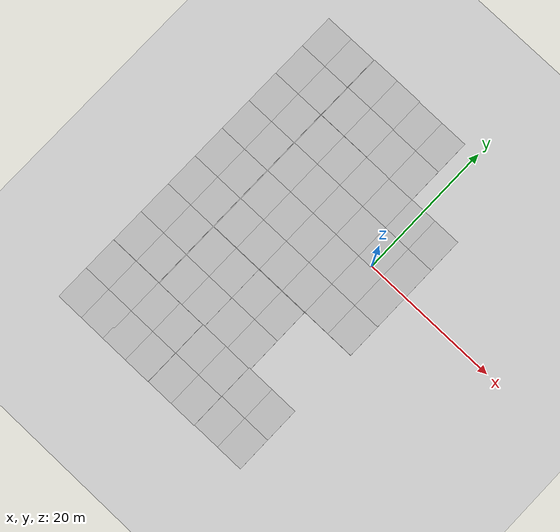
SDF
<sdf version="1.7">
 <world name="default">
  <model name="ground_plane">
   <static>1</static>
   <link name="link">
    <collision name="collision">
     <geometry><plane><normal>0 0 1</normal><size>100 100</size></plane></geometry>
     <surface><friction><ode><mu>100</mu><mu2>50</mu2></ode></friction></surface>
    </collision>
    <visual name="visual">
     <cast_shadows>0</cast_shadows>
     <geometry><plane><normal>0 0 1</normal><size>100 100</size></plane></geometry>
     <material>
      <script><uri>file://media/materials/scripts/gazebo.material</uri><name>Gazebo/Grey</name></script>
     </material>
    </visual>
   </link>
  </model>
  <model name="mud_box">
   <static>1</static>
   <link name="link">
    <collision name="collision"><geometry><box><size>8 10 0.2</size></box></geometry></collision>
    <visual name="visual_1">
     <pose>-2 2.5 0 0 -0 0</pose>
     <cast_shadows>0</cast_shadows>
     <geometry><box><size>4 5 0.2</size></box></geometry>
     <material>
      <script>
       <uri>model://mud_box/materials/scripts</uri>
       <uri>model://mud_box/materials/textures</uri>
       <name>vrc/mud</name>
      </script>
     </material>
    </visual>
    <visual name="visual_2">
     <pose>2 2.5 0 0 -0 0</pose>
     <cast_shadows>0</cast_shadows>
     <geometry><box><size>4 5 0.2</size></box></geometry>
     <material>
      <script>
       <uri>model://mud_box/materials/scripts</uri>
       <uri>model://mud_box/materials/textures</uri>
       <name>vrc/mud</name>
      </script>
     </material>
    </visual>
    <visual name="visual_3">
     <pose>2 -2.5 0 0 -0 0</pose>
     <cast_shadows>0</cast_shadows>
     <geometry><box><size>4 5 0.2</size></box></geometry>
     <material>
      <script>
       <uri>model://mud_box/materials/scripts</uri>
       <uri>model://mud_box/materials/textures</uri>
       <name>vrc/mud</name>
      </script>
     </material>
    </visual>
    <visual name="visual_4">
     <pose>-2 -2.5 0 0 -0 0</pose>
     <cast_shadows>0</cast_shadows>
     <geometry><box><size>4 5 0.2</size></box></geometry>
     <material>
      <script>
       <uri>model://mud_box/materials/scripts</uri>
       <uri>model://mud_box/materials/textures</uri>
       <name>vrc/mud</name>
      </script>
     </material>
    </visual>
   </link>
   <pose>-6.12765 4.83622 0 0 -0 0</pose>
  </model>
  <model name="mud_box_0">
   <static>1</static>
   <link name="link">
    <collision name="collision"><geometry><box><size>8 10 0.2</size></box></geometry></collision>
    <visual name="visual_1">
     <pose>-2 2.5 0 0 -0 0</pose>
     <cast_shadows>0</cast_shadows>
     <geometry><box><size>4 5 0.2</size></box></geometry>
     <material>
      <script>
       <uri>model://mud_box/materials/scripts</uri>
       <uri>model://mud_box/materials/textures</uri>
       <name>vrc/mud</name>
      </script>
     </material>
    </visual>
    <visual name="visual_2">
     <pose>2 2.5 0 0 -0 0</pose>
     <cast_shadows>0</cast_shadows>
     <geometry><box><size>4 5 0.2</size></box></geometry>
     <material>
      <script>
       <uri>model://mud_box/materials/scripts</uri>
       <uri>model://mud_box/materials/textures</uri>
       <name>vrc/mud</name>
      </script>
     </material>
    </visual>
    <visual name="visual_3">
     <pose>2 -2.5 0 0 -0 0</pose>
     <cast_shadows>0</cast_shadows>
     <geometry><box><size>4 5 0.2</size></box></geometry>
     <material>
      <script>
       <uri>model://mud_box/materials/scripts</uri>
       <uri>model://mud_box/materials/textures</uri>
       <name>vrc/mud</name>
      </script>
     </material>
    </visual>
    <visual name="visual_4">
     <pose>-2 -2.5 0 0 -0 0</pose>
     <cast_shadows>0</cast_shadows>
     <geometry><box><size>4 5 0.2</size></box></geometry>
     <material>
      <script>
       <uri>model://mud_box/materials/scripts</uri>
       <uri>model://mud_box/materials/textures</uri>
       <name>vrc/mud</name>
      </script>
     </material>
    </visual>
   </link>
   <pose>1.86767 4.83104 0 0 -0 0</pose>
  </model>
  <model name="mud_box_1">
   <static>1</static>
   <link name="link">
    <collision name="collision"><geometry><box><size>8 10 0.2</size></box></geometry></collision>
    <visual name="visual_1">
     <pose>-2 2.5 0 0 -0 0</pose>
     <cast_shadows>0</cast_shadows>
     <geometry><box><size>4 5 0.2</size></box></geometry>
     <material>
      <script>
       <uri>model://mud_box/materials/scripts</uri>
       <uri>model://mud_box/materials/textures</uri>
       <name>vrc/mud</name>
      </script>
     </material>
    </visual>
    <visual name="visual_2">
     <pose>2 2.5 0 0 -0 0</pose>
     <cast_shadows>0</cast_shadows>
     <geometry><box><size>4 5 0.2</size></box></geometry>
     <material>
      <script>
       <uri>model://mud_box/materials/scripts</uri>
       <uri>model://mud_box/materials/textures</uri>
       <name>vrc/mud</name>
      </script>
     </material>
    </visual>
    <visual name="visual_3">
     <pose>2 -2.5 0 0 -0 0</pose>
     <cast_shadows>0</cast_shadows>
     <geometry><box><size>4 5 0.2</size></box></geometry>
     <material>
      <script>
       <uri>model://mud_box/materials/scripts</uri>
       <uri>model://mud_box/materials/textures</uri>
       <name>vrc/mud</name>
      </script>
     </material>
    </visual>
    <visual name="visual_4">
     <pose>-2 -2.5 0 0 -0 0</pose>
     <cast_shadows>0</cast_shadows>
     <geometry><box><size>4 5 0.2</size></box></geometry>
     <material>
      <script>
       <uri>model://mud_box/materials/scripts</uri>
       <uri>model://mud_box/materials/textures</uri>
       <name>vrc/mud</name>
      </script>
     </material>
    </visual>
   </link>
   <pose>-6.12792 -5.13998 0 0 -0 0</pose>
  </model>
  <model name="mud_box_2">
   <static>1</static>
   <link name="link">
    <collision name="collision"><geometry><box><size>8 10 0.2</size></box></geometry></collision>
    <visual name="visual_1">
     <pose>-2 2.5 0 0 -0 0</pose>
     <cast_shadows>0</cast_shadows>
     <geometry><box><size>4 5 0.2</size></box></geometry>
     <material>
      <script>
       <uri>model://mud_box/materials/scripts</uri>
       <uri>model://mud_box/materials/textures</uri>
       <name>vrc/mud</name>
      </script>
     </material>
    </visual>
    <visual name="visual_2">
     <pose>2 2.5 0 0 -0 0</pose>
     <cast_shadows>0</cast_shadows>
     <geometry><box><size>4 5 0.2</size></box></geometry>
     <material>
      <script>
       <uri>model://mud_box/materials/scripts</uri>
       <uri>model://mud_box/materials/textures</uri>
       <name>vrc/mud</name>
      </script>
     </material>
    </visual>
    <visual name="visual_3">
     <pose>2 -2.5 0 0 -0 0</pose>
     <cast_shadows>0</cast_shadows>
     <geometry><box><size>4 5 0.2</size></box></geometry>
     <material>
      <script>
       <uri>model://mud_box/materials/scripts</uri>
       <uri>model://mud_box/materials/textures</uri>
       <name>vrc/mud</name>
      </script>
     </material>
    </visual>
    <visual name="visual_4">
     <pose>-2 -2.5 0 0 -0 0</pose>
     <cast_shadows>0</cast_shadows>
     <geometry><box><size>4 5 0.2</size></box></geometry>
     <material>
      <script>
       <uri>model://mud_box/materials/scripts</uri>
       <uri>model://mud_box/materials/textures</uri>
       <name>vrc/mud</name>
      </script>
     </material>
    </visual>
   </link>
   <pose>1.85975 -5.14192 0 0 -0 0</pose>
  </model>
  <model name="mud_box_0_clone_clone_1">
   <static>1</static>
   <link name="link">
    <collision name="collision"><geometry><box><size>8 10 0.2</size></box></geometry></collision>
    <visual name="visual_1">
     <pose>-2 2.5 0 0 -0 0</pose>
     <cast_shadows>0</cast_shadows>
     <geometry><box><size>4 5 0.2</size></box></geometry>
     <material>
      <script>
       <uri>model://mud_box/materials/scripts</uri>
       <uri>model://mud_box/materials/textures</uri>
       <name>vrc/mud</name>
      </script>
     </material>
    </visual>
    <visual name="visual_2">
     <pose>2 2.5 0 0 -0 0</pose>
     <cast_shadows>0</cast_shadows>
     <geometry><box><size>4 5 0.2</size></box></geometry>
     <material>
      <script>
       <uri>model://mud_box/materials/scripts</uri>
       <uri>model://mud_box/materials/textures</uri>
       <name>vrc/mud</name>
      </script>
     </material>
    </visual>
    <visual name="visual_3">
     <pose>2 -2.5 0 0 -0 0</pose>
     <cast_shadows>0</cast_shadows>
     <geometry><box><size>4 5 0.2</size></box></geometry>
     <material>
      <script>
       <uri>model://mud_box/materials/scripts</uri>
       <uri>model://mud_box/materials/textures</uri>
       <name>vrc/mud</name>
      </script>
     </material>
    </visual>
    <visual name="visual_4">
     <pose>-2 -2.5 0 0 -0 0</pose>
     <cast_shadows>0</cast_shadows>
     <geometry><box><size>4 5 0.2</size></box></geometry>
     <material>
      <script>
       <uri>model://mud_box/materials/scripts</uri>
       <uri>model://mud_box/materials/textures</uri>
       <name>vrc/mud</name>
      </script>
     </material>
    </visual>
   </link>
   <pose>-14.1276 -5.15209 0 0 -0 0</pose>
  </model>
  <model name="mud_box_0_clone_clone_2">
   <static>1</static>
   <link name="link">
    <collision name="collision"><geometry><box><size>8 10 0.2</size></box></geometry></collision>
    <visual name="visual_1">
     <pose>-2 2.5 0 0 -0 0</pose>
     <cast_shadows>0</cast_shadows>
     <geometry><box><size>4 5 0.2</size></box></geometry>
     <material>
      <script>
       <uri>model://mud_box/materials/scripts</uri>
       <uri>model://mud_box/materials/textures</uri>
       <name>vrc/mud</name>
      </script>
     </material>
    </visual>
    <visual name="visual_2">
     <pose>2 2.5 0 0 -0 0</pose>
     <cast_shadows>0</cast_shadows>
     <geometry><box><size>4 5 0.2</size></box></geometry>
     <material>
      <script>
       <uri>model://mud_box/materials/scripts</uri>
       <uri>model://mud_box/materials/textures</uri>
       <name>vrc/mud</name>
      </script>
     </material>
    </visual>
    <visual name="visual_3">
     <pose>2 -2.5 0 0 -0 0</pose>
     <cast_shadows>0</cast_shadows>
     <geometry><box><size>4 5 0.2</size></box></geometry>
     <material>
      <script>
       <uri>model://mud_box/materials/scripts</uri>
       <uri>model://mud_box/materials/textures</uri>
       <name>vrc/mud</name>
      </script>
     </material>
    </visual>
    <visual name="visual_4">
     <pose>-2 -2.5 0 0 -0 0</pose>
     <cast_shadows>0</cast_shadows>
     <geometry><box><size>4 5 0.2</size></box></geometry>
     <material>
      <script>
       <uri>model://mud_box/materials/scripts</uri>
       <uri>model://mud_box/materials/textures</uri>
       <name>vrc/mud</name>
      </script>
     </material>
    </visual>
   </link>
   <pose>-14.1258 4.84756 0 0 -0 0</pose>
  </model>
  <model name="mud_box_0_clone_clone_2_clone">
   <static>1</static>
   <link name="link">
    <collision name="collision"><geometry><box><size>8 10 0.2</size></box></geometry></collision>
    <visual name="visual_1">
     <pose>-2 2.5 0 0 -0 0</pose>
     <cast_shadows>0</cast_shadows>
     <geometry><box><size>4 5 0.2</size></box></geometry>
     <material>
      <script>
       <uri>model://mud_box/materials/scripts</uri>
       <uri>model://mud_box/materials/textures</uri>
       <name>vrc/mud</name>
      </script>
     </material>
    </visual>
    <visual name="visual_2">
     <pose>2 2.5 0 0 -0 0</pose>
     <cast_shadows>0</cast_shadows>
     <geometry><box><size>4 5 0.2</size></box></geometry>
     <material>
      <script>
       <uri>model://mud_box/materials/scripts</uri>
       <uri>model://mud_box/materials/textures</uri>
       <name>vrc/mud</name>
      </script>
     </material>
    </visual>
    <visual name="visual_3">
     <pose>2 -2.5 0 0 -0 0</pose>
     <cast_shadows>0</cast_shadows>
     <geometry><box><size>4 5 0.2</size></box></geometry>
     <material>
      <script>
       <uri>model://mud_box/materials/scripts</uri>
       <uri>model://mud_box/materials/textures</uri>
       <name>vrc/mud</name>
      </script>
     </material>
    </visual>
    <visual name="visual_4">
     <pose>-2 -2.5 0 0 -0 0</pose>
     <cast_shadows>0</cast_shadows>
     <geometry><box><size>4 5 0.2</size></box></geometry>
     <material>
      <script>
       <uri>model://mud_box/materials/scripts</uri>
       <uri>model://mud_box/materials/textures</uri>
       <name>vrc/mud</name>
      </script>
     </material>
    </visual>
   </link>
   <pose>-14.1222 14.8631 0 0 -0 0</pose>
  </model>
  <model name="mud_box_0_clone_clone_2_clone_clone">
   <static>1</static>
   <link name="link">
    <collision name="collision"><geometry><box><size>8 10 0.2</size></box></geometry></collision>
    <visual name="visual_1">
     <pose>-2 2.5 0 0 -0 0</pose>
     <cast_shadows>0</cast_shadows>
     <geometry><box><size>4 5 0.2</size></box></geometry>
     <material>
      <script>
       <uri>model://mud_box/materials/scripts</uri>
       <uri>model://mud_box/materials/textures</uri>
       <name>vrc/mud</name>
      </script>
     </material>
    </visual>
    <visual name="visual_2">
     <pose>2 2.5 0 0 -0 0</pose>
     <cast_shadows>0</cast_shadows>
     <geometry><box><size>4 5 0.2</size></box></geometry>
     <material>
      <script>
       <uri>model://mud_box/materials/scripts</uri>
       <uri>model://mud_box/materials/textures</uri>
       <name>vrc/mud</name>
      </script>
     </material>
    </visual>
    <visual name="visual_3">
     <pose>2 -2.5 0 0 -0 0</pose>
     <cast_shadows>0</cast_shadows>
     <geometry><box><size>4 5 0.2</size></box></geometry>
     <material>
      <script>
       <uri>model://mud_box/materials/scripts</uri>
       <uri>model://mud_box/materials/textures</uri>
       <name>vrc/mud</name>
      </script>
     </material>
    </visual>
    <visual name="visual_4">
     <pose>-2 -2.5 0 0 -0 0</pose>
     <cast_shadows>0</cast_shadows>
     <geometry><box><size>4 5 0.2</size></box></geometry>
     <material>
      <script>
       <uri>model://mud_box/materials/scripts</uri>
       <uri>model://mud_box/materials/textures</uri>
       <name>vrc/mud</name>
      </script>
     </material>
    </visual>
   </link>
   <pose>-6.12553 14.7777 0 0 -0 0</pose>
  </model>
  <model name="mud_box_0_clone_clone_2_clone_clone_clone_clone_1">
   <static>1</static>
   <link name="link">
    <collision name="collision"><geometry><box><size>8 10 0.2</size></box></geometry></collision>
    <visual name="visual_1">
     <pose>-2 2.5 0 0 -0 0</pose>
     <cast_shadows>0</cast_shadows>
     <geometry><box><size>4 5 0.2</size></box></geometry>
     <material>
      <script>
       <uri>model://mud_box/materials/scripts</uri>
       <uri>model://mud_box/materials/textures</uri>
       <name>vrc/mud</name>
      </script>
     </material>
    </visual>
    <visual name="visual_2">
     <pose>2 2.5 0 0 -0 0</pose>
     <cast_shadows>0</cast_shadows>
     <geometry><box><size>4 5 0.2</size></box></geometry>
     <material>
      <script>
       <uri>model://mud_box/materials/scripts</uri>
       <uri>model://mud_box/materials/textures</uri>
       <name>vrc/mud</name>
      </script>
     </material>
    </visual>
    <visual name="visual_3">
     <pose>2 -2.5 0 0 -0 0</pose>
     <cast_shadows>0</cast_shadows>
     <geometry><box><size>4 5 0.2</size></box></geometry>
     <material>
      <script>
       <uri>model://mud_box/materials/scripts</uri>
       <uri>model://mud_box/materials/textures</uri>
       <name>vrc/mud</name>
      </script>
     </material>
    </visual>
    <visual name="visual_4">
     <pose>-2 -2.5 0 0 -0 0</pose>
     <cast_shadows>0</cast_shadows>
     <geometry><box><size>4 5 0.2</size></box></geometry>
     <material>
      <script>
       <uri>model://mud_box/materials/scripts</uri>
       <uri>model://mud_box/materials/textures</uri>
       <name>vrc/mud</name>
      </script>
     </material>
    </visual>
   </link>
   <pose>-14.1452 -15.1975 0 0 -0 0</pose>
  </model>
  <model name="mud_box_0_clone_clone_2_clone_clone_clone_clone_2">
   <static>1</static>
   <link name="link">
    <collision name="collision"><geometry><box><size>8 10 0.2</size></box></geometry></collision>
    <visual name="visual_1">
     <pose>-2 2.5 0 0 -0 0</pose>
     <cast_shadows>0</cast_shadows>
     <geometry><box><size>4 5 0.2</size></box></geometry>
     <material>
      <script>
       <uri>model://mud_box/materials/scripts</uri>
       <uri>model://mud_box/materials/textures</uri>
       <name>vrc/mud</name>
      </script>
     </material>
    </visual>
    <visual name="visual_2">
     <pose>2 2.5 0 0 -0 0</pose>
     <cast_shadows>0</cast_shadows>
     <geometry><box><size>4 5 0.2</size></box></geometry>
     <material>
      <script>
       <uri>model://mud_box/materials/scripts</uri>
       <uri>model://mud_box/materials/textures</uri>
       <name>vrc/mud</name>
      </script>
     </material>
    </visual>
    <visual name="visual_3">
     <pose>2 -2.5 0 0 -0 0</pose>
     <cast_shadows>0</cast_shadows>
     <geometry><box><size>4 5 0.2</size></box></geometry>
     <material>
      <script>
       <uri>model://mud_box/materials/scripts</uri>
       <uri>model://mud_box/materials/textures</uri>
       <name>vrc/mud</name>
      </script>
     </material>
    </visual>
    <visual name="visual_4">
     <pose>-2 -2.5 0 0 -0 0</pose>
     <cast_shadows>0</cast_shadows>
     <geometry><box><size>4 5 0.2</size></box></geometry>
     <material>
      <script>
       <uri>model://mud_box/materials/scripts</uri>
       <uri>model://mud_box/materials/textures</uri>
       <name>vrc/mud</name>
      </script>
     </material>
    </visual>
   </link>
   <pose>-6.14018 -15.1954 0 0 -0 0</pose>
  </model>
  <model name="mud_box_0_clone_clone_2_clone_clone_clone_clone_10">
   <static>1</static>
   <link name="link">
    <collision name="collision"><geometry><box><size>8 10 0.2</size></box></geometry></collision>
    <visual name="visual_1">
     <pose>-2 2.5 0 0 -0 0</pose>
     <cast_shadows>0</cast_shadows>
     <geometry><box><size>4 5 0.2</size></box></geometry>
     <material>
      <script>
       <uri>model://mud_box/materials/scripts</uri>
       <uri>model://mud_box/materials/textures</uri>
       <name>vrc/mud</name>
      </script>
     </material>
    </visual>
    <visual name="visual_2">
     <pose>2 2.5 0 0 -0 0</pose>
     <cast_shadows>0</cast_shadows>
     <geometry><box><size>4 5 0.2</size></box></geometry>
     <material>
      <script>
       <uri>model://mud_box/materials/scripts</uri>
       <uri>model://mud_box/materials/textures</uri>
       <name>vrc/mud</name>
      </script>
     </material>
    </visual>
    <visual name="visual_3">
     <pose>2 -2.5 0 0 -0 0</pose>
     <cast_shadows>0</cast_shadows>
     <geometry><box><size>4 5 0.2</size></box></geometry>
     <material>
      <script>
       <uri>model://mud_box/materials/scripts</uri>
       <uri>model://mud_box/materials/textures</uri>
       <name>vrc/mud</name>
      </script>
     </material>
    </visual>
    <visual name="visual_4">
     <pose>-2 -2.5 0 0 -0 0</pose>
     <cast_shadows>0</cast_shadows>
     <geometry><box><size>4 5 0.2</size></box></geometry>
     <material>
      <script>
       <uri>model://mud_box/materials/scripts</uri>
       <uri>model://mud_box/materials/textures</uri>
       <name>vrc/mud</name>
      </script>
     </material>
    </visual>
   </link>
   <pose>-22.2387 -15.1656 0 0 -0 0</pose>
  </model>
  <model name="mud_box_0_clone_clone_2_clone_clone_clone_clone_11">
   <static>1</static>
   <link name="link">
    <collision name="collision"><geometry><box><size>8 10 0.2</size></box></geometry></collision>
    <visual name="visual_1">
     <pose>-2 2.5 0 0 -0 0</pose>
     <cast_shadows>0</cast_shadows>
     <geometry><box><size>4 5 0.2</size></box></geometry>
     <material>
      <script>
       <uri>model://mud_box/materials/scripts</uri>
       <uri>model://mud_box/materials/textures</uri>
       <name>vrc/mud</name>
      </script>
     </material>
    </visual>
    <visual name="visual_2">
     <pose>2 2.5 0 0 -0 0</pose>
     <cast_shadows>0</cast_shadows>
     <geometry><box><size>4 5 0.2</size></box></geometry>
     <material>
      <script>
       <uri>model://mud_box/materials/scripts</uri>
       <uri>model://mud_box/materials/textures</uri>
       <name>vrc/mud</name>
      </script>
     </material>
    </visual>
    <visual name="visual_3">
     <pose>2 -2.5 0 0 -0 0</pose>
     <cast_shadows>0</cast_shadows>
     <geometry><box><size>4 5 0.2</size></box></geometry>
     <material>
      <script>
       <uri>model://mud_box/materials/scripts</uri>
       <uri>model://mud_box/materials/textures</uri>
       <name>vrc/mud</name>
      </script>
     </material>
    </visual>
    <visual name="visual_4">
     <pose>-2 -2.5 0 0 -0 0</pose>
     <cast_shadows>0</cast_shadows>
     <geometry><box><size>4 5 0.2</size></box></geometry>
     <material>
      <script>
       <uri>model://mud_box/materials/scripts</uri>
       <uri>model://mud_box/materials/textures</uri>
       <name>vrc/mud</name>
      </script>
     </material>
    </visual>
   </link>
   <pose>-22.2344 -5.18744 0 0 -0 0</pose>
  </model>
  <model name="mud_box_0_clone_clone_2_clone_clone_clone_clone_12">
   <static>1</static>
   <link name="link">
    <collision name="collision"><geometry><box><size>8 10 0.2</size></box></geometry></collision>
    <visual name="visual_1">
     <pose>-2 2.5 0 0 -0 0</pose>
     <cast_shadows>0</cast_shadows>
     <geometry><box><size>4 5 0.2</size></box></geometry>
     <material>
      <script>
       <uri>model://mud_box/materials/scripts</uri>
       <uri>model://mud_box/materials/textures</uri>
       <name>vrc/mud</name>
      </script>
     </material>
    </visual>
    <visual name="visual_2">
     <pose>2 2.5 0 0 -0 0</pose>
     <cast_shadows>0</cast_shadows>
     <geometry><box><size>4 5 0.2</size></box></geometry>
     <material>
      <script>
       <uri>model://mud_box/materials/scripts</uri>
       <uri>model://mud_box/materials/textures</uri>
       <name>vrc/mud</name>
      </script>
     </material>
    </visual>
    <visual name="visual_3">
     <pose>2 -2.5 0 0 -0 0</pose>
     <cast_shadows>0</cast_shadows>
     <geometry><box><size>4 5 0.2</size></box></geometry>
     <material>
      <script>
       <uri>model://mud_box/materials/scripts</uri>
       <uri>model://mud_box/materials/textures</uri>
       <name>vrc/mud</name>
      </script>
     </material>
    </visual>
    <visual name="visual_4">
     <pose>-2 -2.5 0 0 -0 0</pose>
     <cast_shadows>0</cast_shadows>
     <geometry><box><size>4 5 0.2</size></box></geometry>
     <material>
      <script>
       <uri>model://mud_box/materials/scripts</uri>
       <uri>model://mud_box/materials/textures</uri>
       <name>vrc/mud</name>
      </script>
     </material>
    </visual>
   </link>
   <pose>-22.2248 4.81564 0 0 -0 0</pose>
  </model>
  <model name="mud_box_0_clone_clone_2_clone_clone_clone_clone_13">
   <static>1</static>
   <link name="link">
    <collision name="collision"><geometry><box><size>8 10 0.2</size></box></geometry></collision>
    <visual name="visual_1">
     <pose>-2 2.5 0 0 -0 0</pose>
     <cast_shadows>0</cast_shadows>
     <geometry><box><size>4 5 0.2</size></box></geometry>
     <material>
      <script>
       <uri>model://mud_box/materials/scripts</uri>
       <uri>model://mud_box/materials/textures</uri>
       <name>vrc/mud</name>
      </script>
     </material>
    </visual>
    <visual name="visual_2">
     <pose>2 2.5 0 0 -0 0</pose>
     <cast_shadows>0</cast_shadows>
     <geometry><box><size>4 5 0.2</size></box></geometry>
     <material>
      <script>
       <uri>model://mud_box/materials/scripts</uri>
       <uri>model://mud_box/materials/textures</uri>
       <name>vrc/mud</name>
      </script>
     </material>
    </visual>
    <visual name="visual_3">
     <pose>2 -2.5 0 0 -0 0</pose>
     <cast_shadows>0</cast_shadows>
     <geometry><box><size>4 5 0.2</size></box></geometry>
     <material>
      <script>
       <uri>model://mud_box/materials/scripts</uri>
       <uri>model://mud_box/materials/textures</uri>
       <name>vrc/mud</name>
      </script>
     </material>
    </visual>
    <visual name="visual_4">
     <pose>-2 -2.5 0 0 -0 0</pose>
     <cast_shadows>0</cast_shadows>
     <geometry><box><size>4 5 0.2</size></box></geometry>
     <material>
      <script>
       <uri>model://mud_box/materials/scripts</uri>
       <uri>model://mud_box/materials/textures</uri>
       <name>vrc/mud</name>
      </script>
     </material>
    </visual>
   </link>
   <pose>-22.2066 14.8093 0 0 -0 0</pose>
  </model>
  <model name="mud_box_0_clone_clone_2_clone_clone_clone_clone_14">
   <static>1</static>
   <link name="link">
    <collision name="collision"><geometry><box><size>8 10 0.2</size></box></geometry></collision>
    <visual name="visual_1">
     <pose>-2 2.5 0 0 -0 0</pose>
     <cast_shadows>0</cast_shadows>
     <geometry><box><size>4 5 0.2</size></box></geometry>
     <material>
      <script>
       <uri>model://mud_box/materials/scripts</uri>
       <uri>model://mud_box/materials/textures</uri>
       <name>vrc/mud</name>
      </script>
     </material>
    </visual>
    <visual name="visual_2">
     <pose>2 2.5 0 0 -0 0</pose>
     <cast_shadows>0</cast_shadows>
     <geometry><box><size>4 5 0.2</size></box></geometry>
     <material>
      <script>
       <uri>model://mud_box/materials/scripts</uri>
       <uri>model://mud_box/materials/textures</uri>
       <name>vrc/mud</name>
      </script>
     </material>
    </visual>
    <visual name="visual_3">
     <pose>2 -2.5 0 0 -0 0</pose>
     <cast_shadows>0</cast_shadows>
     <geometry><box><size>4 5 0.2</size></box></geometry>
     <material>
      <script>
       <uri>model://mud_box/materials/scripts</uri>
       <uri>model://mud_box/materials/textures</uri>
       <name>vrc/mud</name>
      </script>
     </material>
    </visual>
    <visual name="visual_4">
     <pose>-2 -2.5 0 0 -0 0</pose>
     <cast_shadows>0</cast_shadows>
     <geometry><box><size>4 5 0.2</size></box></geometry>
     <material>
      <script>
       <uri>model://mud_box/materials/scripts</uri>
       <uri>model://mud_box/materials/textures</uri>
       <name>vrc/mud</name>
      </script>
     </material>
    </visual>
   </link>
   <pose>-22.2611 -25.1945 0 0 -0 0</pose>
  </model>
  <model name="mud_box_0_clone_clone_2_clone_clone_clone_clone_15">
   <static>1</static>
   <link name="link">
    <collision name="collision"><geometry><box><size>8 10 0.2</size></box></geometry></collision>
    <visual name="visual_1">
     <pose>-2 2.5 0 0 -0 0</pose>
     <cast_shadows>0</cast_shadows>
     <geometry><box><size>4 5 0.2</size></box></geometry>
     <material>
      <script>
       <uri>model://mud_box/materials/scripts</uri>
       <uri>model://mud_box/materials/textures</uri>
       <name>vrc/mud</name>
      </script>
     </material>
    </visual>
    <visual name="visual_2">
     <pose>2 2.5 0 0 -0 0</pose>
     <cast_shadows>0</cast_shadows>
     <geometry><box><size>4 5 0.2</size></box></geometry>
     <material>
      <script>
       <uri>model://mud_box/materials/scripts</uri>
       <uri>model://mud_box/materials/textures</uri>
       <name>vrc/mud</name>
      </script>
     </material>
    </visual>
    <visual name="visual_3">
     <pose>2 -2.5 0 0 -0 0</pose>
     <cast_shadows>0</cast_shadows>
     <geometry><box><size>4 5 0.2</size></box></geometry>
     <material>
      <script>
       <uri>model://mud_box/materials/scripts</uri>
       <uri>model://mud_box/materials/textures</uri>
       <name>vrc/mud</name>
      </script>
     </material>
    </visual>
    <visual name="visual_4">
     <pose>-2 -2.5 0 0 -0 0</pose>
     <cast_shadows>0</cast_shadows>
     <geometry><box><size>4 5 0.2</size></box></geometry>
     <material>
      <script>
       <uri>model://mud_box/materials/scripts</uri>
       <uri>model://mud_box/materials/textures</uri>
       <name>vrc/mud</name>
      </script>
     </material>
    </visual>
   </link>
   <pose>-14.4584 -25.2044 0 0 -0 0</pose>
  </model>
  <model name="mud_box_0_clone_clone_2_clone_clone_clone_clone_16">
   <static>1</static>
   <link name="link">
    <collision name="collision"><geometry><box><size>8 10 0.2</size></box></geometry></collision>
    <visual name="visual_1">
     <pose>-2 2.5 0 0 -0 0</pose>
     <cast_shadows>0</cast_shadows>
     <geometry><box><size>4 5 0.2</size></box></geometry>
     <material>
      <script>
       <uri>model://mud_box/materials/scripts</uri>
       <uri>model://mud_box/materials/textures</uri>
       <name>vrc/mud</name>
      </script>
     </material>
    </visual>
    <visual name="visual_2">
     <pose>2 2.5 0 0 -0 0</pose>
     <cast_shadows>0</cast_shadows>
     <geometry><box><size>4 5 0.2</size></box></geometry>
     <material>
      <script>
       <uri>model://mud_box/materials/scripts</uri>
       <uri>model://mud_box/materials/textures</uri>
       <name>vrc/mud</name>
      </script>
     </material>
    </visual>
    <visual name="visual_3">
     <pose>2 -2.5 0 0 -0 0</pose>
     <cast_shadows>0</cast_shadows>
     <geometry><box><size>4 5 0.2</size></box></geometry>
     <material>
      <script>
       <uri>model://mud_box/materials/scripts</uri>
       <uri>model://mud_box/materials/textures</uri>
       <name>vrc/mud</name>
      </script>
     </material>
    </visual>
    <visual name="visual_4">
     <pose>-2 -2.5 0 0 -0 0</pose>
     <cast_shadows>0</cast_shadows>
     <geometry><box><size>4 5 0.2</size></box></geometry>
     <material>
      <script>
       <uri>model://mud_box/materials/scripts</uri>
       <uri>model://mud_box/materials/textures</uri>
       <name>vrc/mud</name>
      </script>
     </material>
    </visual>
   </link>
   <pose>-6.42456 -25.1723 0 0 -0 0</pose>
  </model>
  <model name="mud_box_0_clone_clone_2_clone_clone_clone_clone_17">
   <static>1</static>
   <link name="link">
    <collision name="collision"><geometry><box><size>8 10 0.2</size></box></geometry></collision>
    <visual name="visual_1">
     <pose>-2 2.5 0 0 -0 0</pose>
     <cast_shadows>0</cast_shadows>
     <geometry><box><size>4 5 0.2</size></box></geometry>
     <material>
      <script>
       <uri>model://mud_box/materials/scripts</uri>
       <uri>model://mud_box/materials/textures</uri>
       <name>vrc/mud</name>
      </script>
     </material>
    </visual>
    <visual name="visual_2">
     <pose>2 2.5 0 0 -0 0</pose>
     <cast_shadows>0</cast_shadows>
     <geometry><box><size>4 5 0.2</size></box></geometry>
     <material>
      <script>
       <uri>model://mud_box/materials/scripts</uri>
       <uri>model://mud_box/materials/textures</uri>
       <name>vrc/mud</name>
      </script>
     </material>
    </visual>
    <visual name="visual_3">
     <pose>2 -2.5 0 0 -0 0</pose>
     <cast_shadows>0</cast_shadows>
     <geometry><box><size>4 5 0.2</size></box></geometry>
     <material>
      <script>
       <uri>model://mud_box/materials/scripts</uri>
       <uri>model://mud_box/materials/textures</uri>
       <name>vrc/mud</name>
      </script>
     </material>
    </visual>
    <visual name="visual_4">
     <pose>-2 -2.5 0 0 -0 0</pose>
     <cast_shadows>0</cast_shadows>
     <geometry><box><size>4 5 0.2</size></box></geometry>
     <material>
      <script>
       <uri>model://mud_box/materials/scripts</uri>
       <uri>model://mud_box/materials/textures</uri>
       <name>vrc/mud</name>
      </script>
     </material>
    </visual>
   </link>
   <pose>1.59478 -25.1047 0 0 -0 0</pose>
  </model>
 </world>
</sdf>
